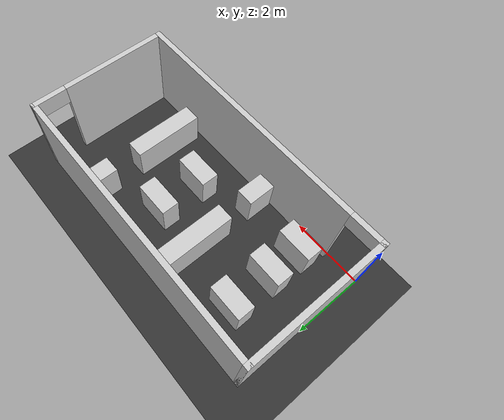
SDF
<sdf version="1.9">
 <world name="default">
  <physics name="1ms" type="dart">
   <max_contacts>100</max_contacts>
   <contact_surface_layer>true</contact_surface_layer>
  </physics>
  <plugin filename="libignition-gazebo-physics-system.so" name="ignition::gazebo::systems::Physics"/>
  <plugin filename="libignition-gazebo-user-commands-system.so" name="ignition::gazebo::systems::UserCommands"/>
  <plugin filename="libignition-gazebo-scene-broadcaster-system.so" name="ignition::gazebo::systems::SceneBroadcaster"/>
  <light type="directional" name="sun">
   <cast_shadows>false</cast_shadows>
   <pose>0 0 10 0 0 0</pose>
   <diffuse>0.8 0.8 0.8 1</diffuse>
   <specular>0.2 0.2 0.2 1</specular>
   <attenuation>
    <range>1000</range>
    <constant>0.9</constant>
    <linear>0.01</linear>
    <quadratic>0.001</quadratic>
   </attenuation>
   <direction>-0.5 0.1 -0.9</direction>
  </light>
  <model name="ground_plane">
   <static>1</static>
   <link name="link">
    <collision name="collision">
     <geometry><plane><normal>0 0 1</normal><size>100 100</size></plane></geometry>
     <surface>
      <contact><collide_bitmask>65535</collide_bitmask></contact>
      <friction><ode><mu>1.0</mu><mu2>1.0</mu2></ode></friction>
     </surface>
     <max_contacts>20</max_contacts>
    </collision>
    <visual name="visual">
     <geometry><plane><normal>0 0 1</normal><size>100 100</size></plane></geometry>
     <material>
      <ambient>0.2 0.2 0.2 1</ambient>
      <diffuse>0.2 0.2 0.2 1</diffuse>
      <specular>0.1 0.1 0.1 1</specular>
     </material>
    </visual>
   </link>
  </model>
  <gravity>0 0 -9.8</gravity>
  <magnetic_field>6e-06 2.3e-05 -4.2e-05</magnetic_field>
  <atmosphere type="adiabatic"/>
  <physics type="ode">
   <max_step_size>0.001</max_step_size>
   <real_time_factor>1</real_time_factor>
   <real_time_update_rate>1000</real_time_update_rate>
  </physics>
  <audio><device>default</device></audio>
  <spherical_coordinates>
   <surface_model>EARTH_WGS84</surface_model>
   <latitude_deg>0</latitude_deg>
   <longitude_deg>0</longitude_deg>
   <elevation>0</elevation>
   <heading_deg>0</heading_deg>
  </spherical_coordinates>
  <model name="WALL">
   <pose>4.009 3.19361 0 0 -0 0</pose>
   <link name="Wall_0">
    <collision name="Wall_0_Collision">
     <geometry><box><size>4 0.15 2.5</size></box></geometry>
     <pose>0 0 1.25 0 -0 0</pose>
    </collision>
    <visual name="Wall_0_Visual">
     <pose>0 0 1.25 0 -0 0</pose>
     <geometry><box><size>4 0.15 2.5</size></box></geometry>
     <material>
      <ambient>0.9 0.9 0.9 1</ambient>
      <diffuse>0.8 0.8 0.8 1</diffuse>
      <specular>0.5 0.5 0.5 1</specular>
      <emissive>0 0 0 0</emissive>
     </material>
     <meta><layer>0</layer></meta>
    </visual>
    <pose>-3.925 -1.1825 0 0 -0 1.5708</pose>
   </link>
   <link name="Wall_1">
    <collision name="Wall_1_Collision">
     <geometry><box><size>8 0.15 2.5</size></box></geometry>
     <pose>0 0 1.25 0 -0 0</pose>
    </collision>
    <visual name="Wall_1_Visual">
     <pose>0 0 1.25 0 -0 0</pose>
     <geometry><box><size>8 0.15 2.5</size></box></geometry>
     <material>
      <ambient>0.9 0.9 0.9 1</ambient>
      <diffuse>0.8 0.8 0.8 1</diffuse>
      <specular>0.5 0.5 0.5 1</specular>
      <emissive>0 0 0 0</emissive>
     </material>
     <meta><layer>0</layer></meta>
    </visual>
    <pose>0 0.7425 0 0 -0 0</pose>
   </link>
   <link name="Wall_2">
    <pose>3.925 -1.1825 0 0 -0 -1.5708</pose>
    <visual name="Wall_2_Visual_0">
     <pose>-1.9675 0 1.25 0 -0 0</pose>
     <geometry><box><size>0.065 0.15 2.5</size></box></geometry>
     <material>
      <ambient>0.9 0.9 0.9 1</ambient>
      <diffuse>0.8 0.8 0.8 1</diffuse>
      <specular>0.5 0.5 0.5 1</specular>
      <emissive>0 0 0 0</emissive>
     </material>
     <meta><layer>0</layer></meta>
    </visual>
    <collision name="Wall_2_Collision_0">
     <geometry><box><size>0.065 0.15 2.5</size></box></geometry>
     <pose>-1.9675 0 1.25 0 -0 0</pose>
    </collision>
    <visual name="Wall_2_Visual_1">
     <pose>0.4825 0 1.25 0 -0 0</pose>
     <geometry><box><size>3.035 0.15 2.5</size></box></geometry>
     <material>
      <ambient>0.9 0.9 0.9 1</ambient>
      <diffuse>0.8 0.8 0.8 1</diffuse>
      <specular>0.5 0.5 0.5 1</specular>
      <emissive>0 0 0 0</emissive>
     </material>
     <meta><layer>0</layer></meta>
    </visual>
    <collision name="Wall_2_Collision_1">
     <geometry><box><size>3.035 0.15 2.5</size></box></geometry>
     <pose>0.4825 0 1.25 0 -0 0</pose>
    </collision>
    <visual name="Wall_2_Visual_2">
     <pose>-1.485 0 2.25 0 -0 0</pose>
     <geometry><box><size>0.9 0.15 0.5</size></box></geometry>
     <material>
      <ambient>0.9 0.9 0.9 1</ambient>
      <diffuse>0.8 0.8 0.8 1</diffuse>
      <specular>0.5 0.5 0.5 1</specular>
      <emissive>0 0 0 0</emissive>
     </material>
     <meta><layer>0</layer></meta>
    </visual>
    <collision name="Wall_2_Collision_2">
     <geometry><box><size>0.9 0.15 0.5</size></box></geometry>
     <pose>-1.485 0 2.25 0 -0 0</pose>
    </collision>
   </link>
   <link name="Wall_3">
    <pose>0 -3.1075 0 0 -0 3.14159</pose>
    <visual name="Wall_3_Visual_0">
     <pose>-0.4875 0 1.25 0 -0 0</pose>
     <geometry><box><size>7.025 0.15 2.5</size></box></geometry>
     <material>
      <ambient>0.9 0.9 0.9 1</ambient>
      <diffuse>0.8 0.8 0.8 1</diffuse>
      <specular>0.5 0.5 0.5 1</specular>
      <emissive>0 0 0 0</emissive>
     </material>
     <meta><layer>0</layer></meta>
    </visual>
    <collision name="Wall_3_Collision_0">
     <geometry><box><size>7.025 0.15 2.5</size></box></geometry>
     <pose>-0.4875 0 1.35 0 -0 0</pose>
    </collision>
    <visual name="Wall_3_Visual_1">
     <pose>3.9625 0 1.25 0 -0 0</pose>
     <geometry><box><size>0.075 0.15 2.5</size></box></geometry>
     <material>
      <ambient>0.9 0.9 0.9 1</ambient>
      <diffuse>0.8 0.8 0.8 1</diffuse>
      <specular>0.5 0.5 0.5 1</specular>
      <emissive>0 0 0 0</emissive>
     </material>
     <meta><layer>0</layer></meta>
    </visual>
    <collision name="Wall_3_Collision_1">
     <geometry><box><size>0.075 0.15 2.5</size></box></geometry>
     <pose>3.9625 0 1.25 0 -0 0</pose>
    </collision>
    <visual name="Wall_3_Visual_2">
     <pose>3.475 0 2.25 0 -0 0</pose>
     <geometry><box><size>0.9 0.15 0.5</size></box></geometry>
     <material>
      <ambient>0.9 0.9 0.9 1</ambient>
      <diffuse>0.8 0.8 0.8 1</diffuse>
      <specular>0.5 0.5 0.5 1</specular>
      <emissive>0 0 0 0</emissive>
     </material>
     <meta><layer>0</layer></meta>
    </visual>
    <collision name="Wall_3_Collision_2">
     <geometry><box><size>0.9 0.15 0.5</size></box></geometry>
     <pose>3.475 0 2.25 0 -0 0</pose>
    </collision>
   </link>
   <static>1</static>
  </model>
  <model name="MAZE">
   <link name="link_0">
    <inertial>
     <mass>1</mass>
     <inertia>
      <ixx>0.166667</ixx>
      <ixy>0</ixy>
      <ixz>0</ixz>
      <iyy>0.166667</iyy>
      <iyz>0</iyz>
      <izz>0.166667</izz>
     </inertia>
    </inertial>
    <pose>-2.15855 1.01643 0 0 -0 0</pose>
    <visual name="visual">
     <geometry><box><size>1 0.5 1</size></box></geometry>
     <material>
      <ambient>0.9 0.9 0.9 1</ambient>
      <diffuse>0.8 0.8 0.8 1</diffuse>
      <specular>0.5 0.5 0.5 1</specular>
      <emissive>0 0 0 0</emissive>
     </material>
    </visual>
    <collision name="collision"><geometry><box><size>1 0.5 1</size></box></geometry></collision>
   </link>
   <link name="link_1">
    <inertial><mass>20</mass></inertial>
    <pose>-2.14472 -0.227008 0 0 -0 0</pose>
    <visual name="visual">
     <geometry><box><size>1 0.5 1</size></box></geometry>
     <material>
      <ambient>0.9 0.9 0.9 1</ambient>
      <diffuse>0.8 0.8 0.8 1</diffuse>
      <specular>0.5 0.5 0.5 1</specular>
      <emissive>0 0 0 0</emissive>
     </material>
    </visual>
    <collision name="collision"><geometry><box><size>1 0.5 1</size></box></geometry></collision>
   </link>
   <link name="link_2">
    <inertial><mass>20</mass></inertial>
    <pose>-2.1412 -1.22475 0 0 -0 0</pose>
    <visual name="visual">
     <geometry><box><size>1 0.5 1</size></box></geometry>
     <material>
      <ambient>0.9 0.9 0.9 1</ambient>
      <diffuse>0.8 0.8 0.8 1</diffuse>
      <specular>0.5 0.5 0.5 1</specular>
      <emissive>0 0 0 0</emissive>
     </material>
    </visual>
    <collision name="collision"><geometry><box><size>1 0.5 1</size></box></geometry></collision>
   </link>
   <link name="link_3">
    <inertial><mass>20</mass></inertial>
    <pose>-0.393911 0.703019 0 0 -0 0</pose>
    <visual name="visual">
     <geometry><box><size>0.5 2 1</size></box></geometry>
     <material>
      <ambient>0.9 0.9 0.9 1</ambient>
      <diffuse>0.8 0.8 0.8 1</diffuse>
      <specular>0.5 0.5 0.5 1</specular>
      <emissive>0 0 0 0</emissive>
     </material>
    </visual>
    <collision name="collision"><geometry><box><size>0.5 2 1</size></box></geometry></collision>
   </link>
   <link name="link_4">
    <inertial><mass>20</mass></inertial>
    <pose>-0.400091 -1.32987 0 0 -0 0</pose>
    <visual name="visual">
     <geometry><box><size>0.5 0.8 1</size></box></geometry>
     <material>
      <ambient>0.9 0.9 0.9 1</ambient>
      <diffuse>0.8 0.8 0.8 1</diffuse>
      <specular>0.5 0.5 0.5 1</specular>
      <emissive>0 0 0 0</emissive>
     </material>
    </visual>
    <collision name="collision"><geometry><box><size>0.5 0.8 1</size></box></geometry></collision>
   </link>
   <link name="link_5">
    <inertial><mass>20</mass></inertial>
    <pose>2.57024 -0.604209 0 0 -0 0</pose>
    <visual name="visual">
     <geometry><box><size>0.5 2 1</size></box></geometry>
     <material>
      <ambient>0.9 0.9 0.9 1</ambient>
      <diffuse>0.8 0.8 0.8 1</diffuse>
      <specular>0.5 0.5 0.5 1</specular>
      <emissive>0 0 0 0</emissive>
     </material>
    </visual>
    <collision name="collision"><geometry><box><size>0.5 2 1</size></box></geometry></collision>
   </link>
   <link name="link_6">
    <inertial><mass>20</mass></inertial>
    <pose>2.58176 1.52586 0 0 -0 0</pose>
    <visual name="visual">
     <geometry><box><size>0.5 0.8 1</size></box></geometry>
     <material>
      <ambient>0.9 0.9 0.9 1</ambient>
      <diffuse>0.8 0.8 0.8 1</diffuse>
      <specular>0.5 0.5 0.5 1</specular>
      <emissive>0 0 0 0</emissive>
     </material>
    </visual>
    <collision name="collision"><geometry><box><size>0.5 0.8 1</size></box></geometry></collision>
   </link>
   <link name="link_7">
    <inertial><mass>20</mass></inertial>
    <pose>1.04324 -0.584471 0 0 -0 0</pose>
    <visual name="visual">
     <geometry><box><size>1 0.5 1</size></box></geometry>
     <material>
      <ambient>0.9 0.9 0.9 1</ambient>
      <diffuse>0.8 0.8 0.8 1</diffuse>
      <specular>0.5 0.5 0.5 1</specular>
      <emissive>0 0 0 0</emissive>
     </material>
    </visual>
    <collision name="collision"><geometry><box><size>1 0.5 1</size></box></geometry></collision>
   </link>
   <link name="link_8">
    <inertial><mass>20</mass></inertial>
    <pose>1.04324 0.725009 0 0 -0 0</pose>
    <visual name="visual">
     <geometry><box><size>1 0.5 1</size></box></geometry>
     <material>
      <ambient>0.9 0.9 0.9 1</ambient>
      <diffuse>0.8 0.8 0.8 1</diffuse>
      <specular>0.5 0.5 0.5 1</specular>
      <emissive>0 0 0 0</emissive>
     </material>
    </visual>
    <collision name="collision"><geometry><box><size>1 0.5 1</size></box></geometry></collision>
   </link>
   <pose>3.65855 1.92756 0.5 0 -0 0</pose>
  </model>
 </world>
</sdf>
